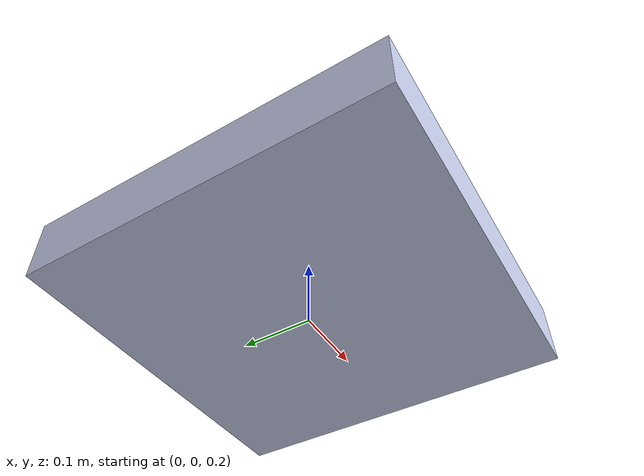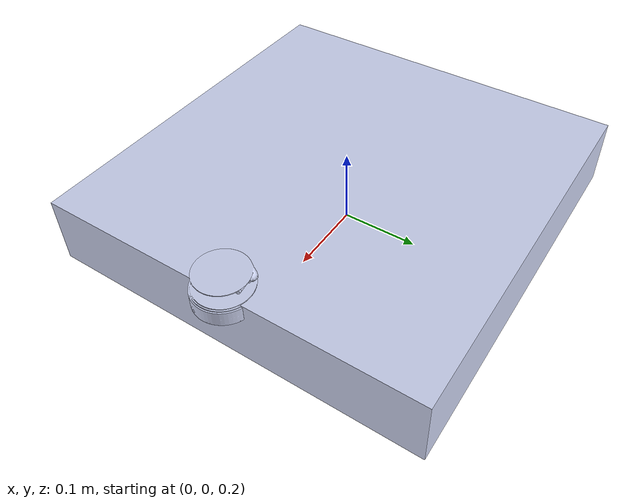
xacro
<?xml version="1.0" ?>
<robot name="holonomic_bot" xmlns:xacro="http://ros.org/wiki/xacro">
  <xacro:include filename="$(find motion_model)/urdf/common/common_properties.xacro"/>
  <xacro:include filename="$(find motion_model)/urdf/holonomic/holonomic.gazebo.xacro"/>

  <link name="base_footprint"/>

  <joint name="base_joint" type="fixed">
    <parent link="base_footprint"/>
    <child link="base_link"/>
    <origin xyz="0.0 0.0 0.2465" rpy="0 0 0"/>
  </joint>

  <link
    name="base_link">
    <inertial>
      <origin
        xyz="-0.0070361 -0.0010307 -0.094165"
        rpy="0 0 0" />
      <mass
        value="7" />
      <inertia
        ixx="0.114"
        ixy="3.4187E-05"
        ixz="-0.0079587"
        iyy="0.084746"
        iyz="-0.00069939"
        izz="0.14914" />
    </inertial>
    <visual>
      <origin
        xyz="0 0 0"
        rpy="0 0 0" />
      <geometry>
        <box size="0.5 0.5 0.09" />
      </geometry>
      <material
        name="">
        <color
          rgba="0.79216 0.81961 0.93333 1" />
      </material>
    </visual>
    <collision>
      <origin
        xyz="0 0 0"
        rpy="0 0 0" />
      <geometry>
        <box size="0.5 0.5 0.09" />
      </geometry>
    </collision>
  </link>

  <joint
    name="lidar_joint"
    type="fixed">
    <origin
      xyz="0.23721 0 0.0453"
      rpy="0 1.111E-15 0" />
    <parent
      link="base_link" />
    <child
      link="lidar_link" />
    <axis
      xyz="0 0 0" />
  </joint>

  <joint name="imu_joint" type="fixed">
    <parent link="base_link"/>
    <child link="imu_link"/>
    <origin xyz="0.0 -0.07 0.37" rpy="0 0 ${-M_PI*0.5}"/>
  </joint>

  <link name="imu_link"/>

  <link
    name="lidar_link">
    <inertial>
      <origin
        xyz="-0.25974 -0.001068 -0.098004"
        rpy="0 0 3.141592" />
      <mass
        value="0.05" />
      <inertia
        ixx="6.003E-06"
        ixy="2.5645E-07"
        ixz="-2.0674E-06"
        iyy="8.525E-06"
        iyz="7.9724E-08"
        izz="3.7518E-06" />
    </inertial>
    <visual>
      <origin
        xyz="0 0 0"
        rpy="0 0 3.141592" />
      <geometry>
        <mesh
          filename="package://motion_model/meshes/lidar.STL" />
      </geometry>
      <material
        name="">
        <color
          rgba="0.79216 0.81961 0.93333 1" />
      </material>
    </visual>
    <collision>
      <origin
        xyz="0 0 0"
        rpy="0 0 0" />
      <geometry>
        <mesh
          filename="package://motion_model/meshes/lidar.STL" />
      </geometry>
    </collision>
  </link>

</robot>
